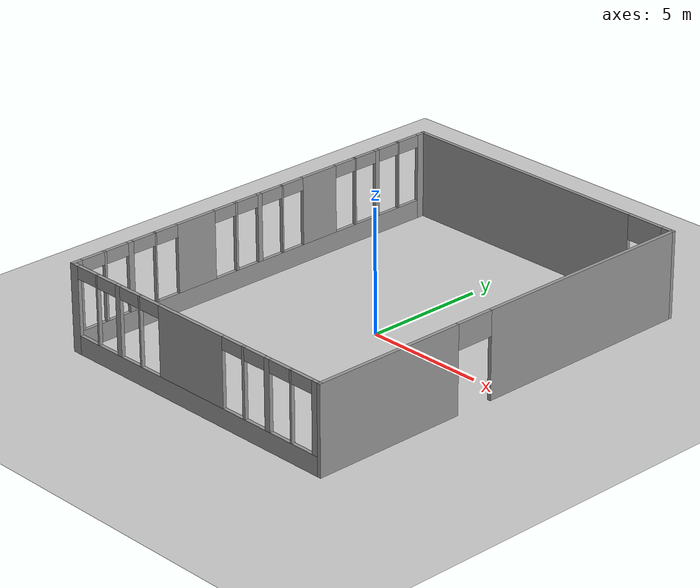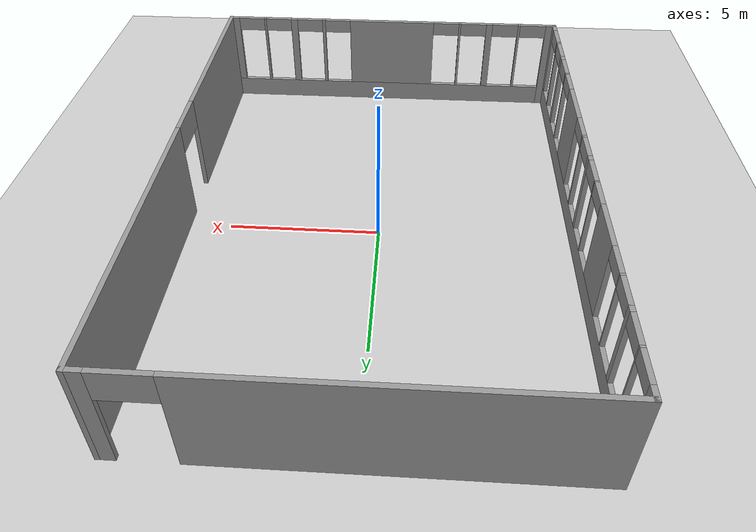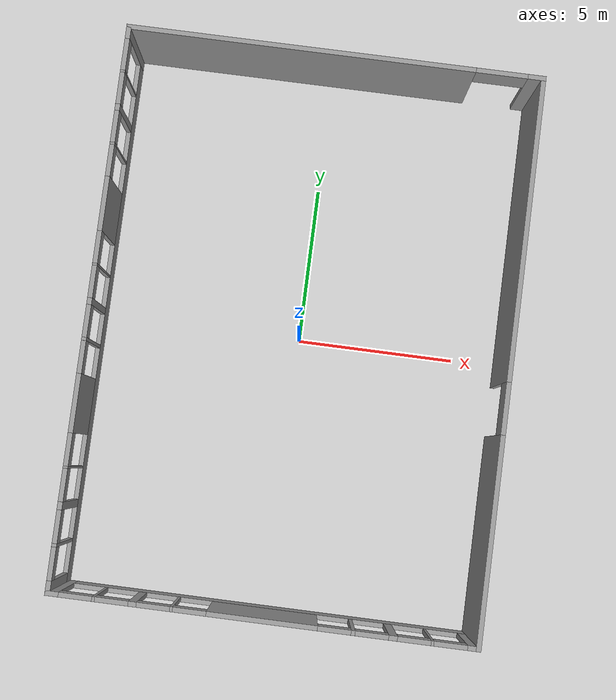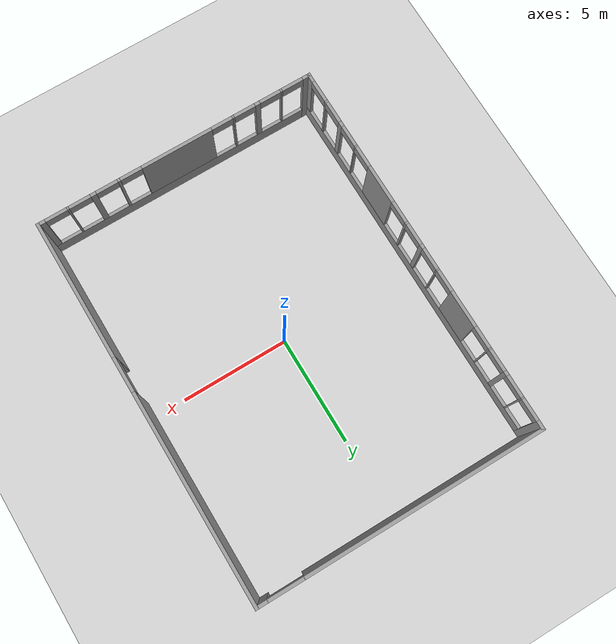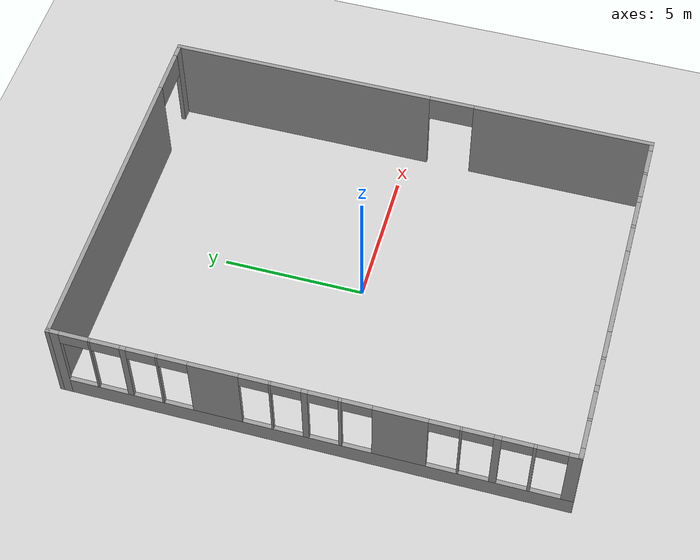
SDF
<sdf version="1.6">
 <world name="default">
  <model name="ground_plane">
   <static>1</static>
   <link name="link">
    <collision name="collision">
     <geometry><plane><normal>0 0 1</normal><size>100 100</size></plane></geometry>
     <surface><friction><ode><mu>100</mu><mu2>50</mu2></ode></friction></surface>
    </collision>
    <visual name="visual">
     <cast_shadows>0</cast_shadows>
     <geometry><plane><normal>0 0 1</normal><size>100 100</size></plane></geometry>
     <material>
      <script><uri>file://media/materials/scripts/gazebo.material</uri><name>Gazebo/Grey</name></script>
     </material>
    </visual>
   </link>
  </model>
  <model name="PiantaDefinitivaAlfa">
   <pose>0.023894 0.00572 0 0 -0 0</pose>
   <link name="Wall_0">
    <pose>0 -8.68 0 0 -0 0</pose>
    <visual name="Wall_0_Visual_0">
     <pose>-6.29943 0 1.75 0 -0 0</pose>
     <geometry><box><size>0.401138 0.15 3.5</size></box></geometry>
     <material>
      <script><uri>file://media/materials/scripts/gazebo.material</uri><name>Gazebo/Grey</name></script>
      <ambient>1 1 1 1</ambient>
     </material>
     <meta><layer>0</layer></meta>
    </visual>
    <collision name="Wall_0_Collision_0">
     <geometry><box><size>0.401138 0.15 3.5</size></box></geometry>
     <pose>-6.29943 0 1.75 0 -0 0</pose>
    </collision>
    <visual name="Wall_0_Visual_1">
     <pose>0.200569 0 0.375 0 -0 0</pose>
     <geometry><box><size>12.5989 0.15 0.75</size></box></geometry>
     <material>
      <script><uri>file://media/materials/scripts/gazebo.material</uri><name>Gazebo/Grey</name></script>
      <ambient>1 1 1 1</ambient>
     </material>
     <meta><layer>0</layer></meta>
    </visual>
    <collision name="Wall_0_Collision_1">
     <geometry><box><size>12.5989 0.15 0.75</size></box></geometry>
     <pose>0.200569 0 0.375 0 -0 0</pose>
    </collision>
    <visual name="Wall_0_Visual_2">
     <pose>-5.05617 0 2.125 0 -0 0</pose>
     <geometry><box><size>0.085387 0.15 2.75</size></box></geometry>
     <material>
      <script><uri>file://media/materials/scripts/gazebo.material</uri><name>Gazebo/Grey</name></script>
      <ambient>1 1 1 1</ambient>
     </material>
     <meta><layer>0</layer></meta>
    </visual>
    <collision name="Wall_0_Collision_2">
     <geometry><box><size>0.085387 0.15 2.75</size></box></geometry>
     <pose>-5.05617 0 2.125 0 -0 0</pose>
    </collision>
    <visual name="Wall_0_Visual_3">
     <pose>-3.89258 0 2.125 0 -0 0</pose>
     <geometry><box><size>0.241794 0.15 2.75</size></box></geometry>
     <material>
      <script><uri>file://media/materials/scripts/gazebo.material</uri><name>Gazebo/Grey</name></script>
      <ambient>1 1 1 1</ambient>
     </material>
     <meta><layer>0</layer></meta>
    </visual>
    <collision name="Wall_0_Collision_3">
     <geometry><box><size>0.241794 0.15 2.75</size></box></geometry>
     <pose>-3.89258 0 2.125 0 -0 0</pose>
    </collision>
    <visual name="Wall_0_Visual_4">
     <pose>-2.72949 0 2.125 0 -0 0</pose>
     <geometry><box><size>0.084384 0.15 2.75</size></box></geometry>
     <material>
      <script><uri>file://media/materials/scripts/gazebo.material</uri><name>Gazebo/Grey</name></script>
      <ambient>1 1 1 1</ambient>
     </material>
     <meta><layer>0</layer></meta>
    </visual>
    <collision name="Wall_0_Collision_4">
     <geometry><box><size>0.084384 0.15 2.75</size></box></geometry>
     <pose>-2.72949 0 2.125 0 -0 0</pose>
    </collision>
    <visual name="Wall_0_Visual_5">
     <pose>-0.027274 0 2.125 0 -0 0</pose>
     <geometry><box><size>3.32004 0.15 2.75</size></box></geometry>
     <material>
      <script><uri>file://media/materials/scripts/gazebo.material</uri><name>Gazebo/Grey</name></script>
      <ambient>1 1 1 1</ambient>
     </material>
     <meta><layer>0</layer></meta>
    </visual>
    <collision name="Wall_0_Collision_5">
     <geometry><box><size>3.32004 0.15 2.75</size></box></geometry>
     <pose>-0.027274 0 2.125 0 -0 0</pose>
    </collision>
    <visual name="Wall_0_Visual_6">
     <pose>2.69243 0 2.125 0 -0 0</pose>
     <geometry><box><size>0.119364 0.15 2.75</size></box></geometry>
     <material>
      <script><uri>file://media/materials/scripts/gazebo.material</uri><name>Gazebo/Grey</name></script>
      <ambient>1 1 1 1</ambient>
     </material>
     <meta><layer>0</layer></meta>
    </visual>
    <collision name="Wall_0_Collision_6">
     <geometry><box><size>0.119364 0.15 2.75</size></box></geometry>
     <pose>2.69243 0 2.125 0 -0 0</pose>
    </collision>
    <visual name="Wall_0_Visual_7">
     <pose>3.88176 0 2.125 0 -0 0</pose>
     <geometry><box><size>0.259284 0.15 2.75</size></box></geometry>
     <material>
      <script><uri>file://media/materials/scripts/gazebo.material</uri><name>Gazebo/Grey</name></script>
      <ambient>1 1 1 1</ambient>
     </material>
     <meta><layer>0</layer></meta>
    </visual>
    <collision name="Wall_0_Collision_7">
     <geometry><box><size>0.259284 0.15 2.75</size></box></geometry>
     <pose>3.88176 0 2.125 0 -0 0</pose>
    </collision>
    <visual name="Wall_0_Visual_8">
     <pose>5.05359 0 2.125 0 -0 0</pose>
     <geometry><box><size>0.084384 0.15 2.75</size></box></geometry>
     <material>
      <script><uri>file://media/materials/scripts/gazebo.material</uri><name>Gazebo/Grey</name></script>
      <ambient>1 1 1 1</ambient>
     </material>
     <meta><layer>0</layer></meta>
    </visual>
    <collision name="Wall_0_Collision_8">
     <geometry><box><size>0.084384 0.15 2.75</size></box></geometry>
     <pose>5.05359 0 2.125 0 -0 0</pose>
    </collision>
    <visual name="Wall_0_Visual_9">
     <pose>6.29789 0 2.125 0 -0 0</pose>
     <geometry><box><size>0.404219 0.15 2.75</size></box></geometry>
     <material>
      <script><uri>file://media/materials/scripts/gazebo.material</uri><name>Gazebo/Grey</name></script>
      <ambient>1 1 1 1</ambient>
     </material>
     <meta><layer>0</layer></meta>
    </visual>
    <collision name="Wall_0_Collision_9">
     <geometry><box><size>0.404219 0.15 2.75</size></box></geometry>
     <pose>6.29789 0 2.125 0 -0 0</pose>
    </collision>
    <visual name="Wall_0_Visual_10">
     <pose>-5.59886 0 3.25 0 -0 0</pose>
     <geometry><box><size>1 0.15 0.5</size></box></geometry>
     <material>
      <script><uri>file://media/materials/scripts/gazebo.material</uri><name>Gazebo/Grey</name></script>
      <ambient>1 1 1 1</ambient>
     </material>
     <meta><layer>0</layer></meta>
    </visual>
    <collision name="Wall_0_Collision_10">
     <geometry><box><size>1 0.15 0.5</size></box></geometry>
     <pose>-5.59886 0 3.25 0 -0 0</pose>
    </collision>
    <visual name="Wall_0_Visual_11">
     <pose>-4.51347 0 3.25 0 -0 0</pose>
     <geometry><box><size>1 0.15 0.5</size></box></geometry>
     <material>
      <script><uri>file://media/materials/scripts/gazebo.material</uri><name>Gazebo/Grey</name></script>
      <ambient>1 1 1 1</ambient>
     </material>
     <meta><layer>0</layer></meta>
    </visual>
    <collision name="Wall_0_Collision_11">
     <geometry><box><size>1 0.15 0.5</size></box></geometry>
     <pose>-4.51347 0 3.25 0 -0 0</pose>
    </collision>
    <visual name="Wall_0_Visual_12">
     <pose>-3.27168 0 3.25 0 -0 0</pose>
     <geometry><box><size>1 0.15 0.5</size></box></geometry>
     <material>
      <script><uri>file://media/materials/scripts/gazebo.material</uri><name>Gazebo/Grey</name></script>
      <ambient>1 1 1 1</ambient>
     </material>
     <meta><layer>0</layer></meta>
    </visual>
    <collision name="Wall_0_Collision_12">
     <geometry><box><size>1 0.15 0.5</size></box></geometry>
     <pose>-3.27168 0 3.25 0 -0 0</pose>
    </collision>
    <visual name="Wall_0_Visual_13">
     <pose>-2.1873 0 3.25 0 -0 0</pose>
     <geometry><box><size>1 0.15 0.5</size></box></geometry>
     <material>
      <script><uri>file://media/materials/scripts/gazebo.material</uri><name>Gazebo/Grey</name></script>
      <ambient>1 1 1 1</ambient>
     </material>
     <meta><layer>0</layer></meta>
    </visual>
    <collision name="Wall_0_Collision_13">
     <geometry><box><size>1 0.15 0.5</size></box></geometry>
     <pose>-2.1873 0 3.25 0 -0 0</pose>
    </collision>
    <visual name="Wall_0_Visual_14">
     <pose>2.13275 0 3.25 0 -0 0</pose>
     <geometry><box><size>1 0.15 0.5</size></box></geometry>
     <material>
      <script><uri>file://media/materials/scripts/gazebo.material</uri><name>Gazebo/Grey</name></script>
      <ambient>1 1 1 1</ambient>
     </material>
     <meta><layer>0</layer></meta>
    </visual>
    <collision name="Wall_0_Collision_14">
     <geometry><box><size>1 0.15 0.5</size></box></geometry>
     <pose>2.13275 0 3.25 0 -0 0</pose>
    </collision>
    <visual name="Wall_0_Visual_15">
     <pose>3.25211 0 3.25 0 -0 0</pose>
     <geometry><box><size>1 0.15 0.5</size></box></geometry>
     <material>
      <script><uri>file://media/materials/scripts/gazebo.material</uri><name>Gazebo/Grey</name></script>
      <ambient>1 1 1 1</ambient>
     </material>
     <meta><layer>0</layer></meta>
    </visual>
    <collision name="Wall_0_Collision_15">
     <geometry><box><size>1 0.15 0.5</size></box></geometry>
     <pose>3.25211 0 3.25 0 -0 0</pose>
    </collision>
    <visual name="Wall_0_Visual_16">
     <pose>4.5114 0 3.25 0 -0 0</pose>
     <geometry><box><size>1 0.15 0.5</size></box></geometry>
     <material>
      <script><uri>file://media/materials/scripts/gazebo.material</uri><name>Gazebo/Grey</name></script>
      <ambient>1 1 1 1</ambient>
     </material>
     <meta><layer>0</layer></meta>
    </visual>
    <collision name="Wall_0_Collision_16">
     <geometry><box><size>1 0.15 0.5</size></box></geometry>
     <pose>4.5114 0 3.25 0 -0 0</pose>
    </collision>
    <visual name="Wall_0_Visual_17">
     <pose>5.59578 0 3.25 0 -0 0</pose>
     <geometry><box><size>1 0.15 0.5</size></box></geometry>
     <material>
      <script><uri>file://media/materials/scripts/gazebo.material</uri><name>Gazebo/Grey</name></script>
      <ambient>1 1 1 1</ambient>
     </material>
     <meta><layer>0</layer></meta>
    </visual>
    <collision name="Wall_0_Collision_17">
     <geometry><box><size>1 0.15 0.5</size></box></geometry>
     <pose>5.59578 0 3.25 0 -0 0</pose>
    </collision>
   </link>
   <link name="Wall_2">
    <pose>6.425 0 0 0 -0 1.5708</pose>
    <visual name="Wall_2_Visual_0">
     <pose>-5.54089 0 1.75 0 -0 0</pose>
     <geometry><box><size>6.42841 0.15 3.5</size></box></geometry>
     <material>
      <script><uri>file://media/materials/scripts/gazebo.material</uri><name>Gazebo/Grey</name></script>
      <ambient>1 1 1 1</ambient>
     </material>
     <meta><layer>0</layer></meta>
    </visual>
    <collision name="Wall_2_Collision_0">
     <geometry><box><size>6.42841 0.15 3.5</size></box></geometry>
     <pose>-5.54089 0 1.75 0 -0 0</pose>
    </collision>
    <visual name="Wall_2_Visual_1">
     <pose>4.0142 0 1.75 0 -0 0</pose>
     <geometry><box><size>9.48178 0.15 3.5</size></box></geometry>
     <material>
      <script><uri>file://media/materials/scripts/gazebo.material</uri><name>Gazebo/Grey</name></script>
      <ambient>1 1 1 1</ambient>
     </material>
     <meta><layer>0</layer></meta>
    </visual>
    <collision name="Wall_2_Collision_1">
     <geometry><box><size>9.48178 0.15 3.5</size></box></geometry>
     <pose>4.0142 0 1.75 0 -0 0</pose>
    </collision>
    <visual name="Wall_2_Visual_2">
     <pose>-1.52668 0 3 0 -0 0</pose>
     <geometry><box><size>1.6 0.15 1</size></box></geometry>
     <material>
      <script><uri>file://media/materials/scripts/gazebo.material</uri><name>Gazebo/Grey</name></script>
      <ambient>1 1 1 1</ambient>
     </material>
     <meta><layer>0</layer></meta>
    </visual>
    <collision name="Wall_2_Collision_2">
     <geometry><box><size>1.6 0.15 1</size></box></geometry>
     <pose>-1.52668 0 3 0 -0 0</pose>
    </collision>
   </link>
   <link name="Wall_3">
    <pose>0 8.68 0 0 -0 3.14159</pose>
    <visual name="Wall_3_Visual_0">
     <pose>-6.22135 0 1.75 0 -0 0</pose>
     <geometry><box><size>0.557299 0.15 3.5</size></box></geometry>
     <material>
      <script><uri>file://media/materials/scripts/gazebo.material</uri><name>Gazebo/Grey</name></script>
      <ambient>1 1 1 1</ambient>
     </material>
     <meta><layer>0</layer></meta>
    </visual>
    <collision name="Wall_3_Collision_0">
     <geometry><box><size>0.557299 0.15 3.5</size></box></geometry>
     <pose>-6.22135 0 1.75 0 -0 0</pose>
    </collision>
    <visual name="Wall_3_Visual_1">
     <pose>1.07865 0 1.75 0 -0 0</pose>
     <geometry><box><size>10.8427 0.15 3.5</size></box></geometry>
     <material>
      <script><uri>file://media/materials/scripts/gazebo.material</uri><name>Gazebo/Grey</name></script>
      <ambient>1 1 1 1</ambient>
     </material>
     <meta><layer>0</layer></meta>
    </visual>
    <collision name="Wall_3_Collision_1">
     <geometry><box><size>10.8427 0.15 3.5</size></box></geometry>
     <pose>1.07865 0 1.75 0 -0 0</pose>
    </collision>
    <visual name="Wall_3_Visual_2">
     <pose>-5.1427 0 3 0 -0 0</pose>
     <geometry><box><size>1.6 0.15 1</size></box></geometry>
     <material>
      <script><uri>file://media/materials/scripts/gazebo.material</uri><name>Gazebo/Grey</name></script>
      <ambient>1 1 1 1</ambient>
     </material>
     <meta><layer>0</layer></meta>
    </visual>
    <collision name="Wall_3_Collision_2">
     <geometry><box><size>1.6 0.15 1</size></box></geometry>
     <pose>-5.1427 0 3 0 -0 0</pose>
    </collision>
   </link>
   <link name="Wall_4">
    <pose>-6.425 0.005 0 0 0 -1.5708</pose>
    <visual name="Wall_4_Visual_0">
     <pose>-8.52384 0 1.75 0 -0 0</pose>
     <geometry><box><size>0.452322 0.15 3.5</size></box></geometry>
     <material>
      <script><uri>file://media/materials/scripts/gazebo.material</uri><name>Gazebo/Grey</name></script>
      <ambient>1 1 1 1</ambient>
     </material>
     <meta><layer>0</layer></meta>
    </visual>
    <collision name="Wall_4_Collision_0">
     <geometry><box><size>0.452322 0.15 3.5</size></box></geometry>
     <pose>-8.52384 0 1.75 0 -0 0</pose>
    </collision>
    <visual name="Wall_4_Visual_1">
     <pose>0.226161 0 0.375 0 -0 0</pose>
     <geometry><box><size>17.0477 0.15 0.75</size></box></geometry>
     <material>
      <script><uri>file://media/materials/scripts/gazebo.material</uri><name>Gazebo/Grey</name></script>
      <ambient>1 1 1 1</ambient>
     </material>
     <meta><layer>0</layer></meta>
    </visual>
    <collision name="Wall_4_Collision_1">
     <geometry><box><size>17.0477 0.15 0.75</size></box></geometry>
     <pose>0.226161 0 0.375 0 -0 0</pose>
    </collision>
    <visual name="Wall_4_Visual_2">
     <pose>-7.26423 0 2.125 0 -0 0</pose>
     <geometry><box><size>0.066894 0.15 2.75</size></box></geometry>
     <material>
      <script><uri>file://media/materials/scripts/gazebo.material</uri><name>Gazebo/Grey</name></script>
      <ambient>1 1 1 1</ambient>
     </material>
     <meta><layer>0</layer></meta>
    </visual>
    <collision name="Wall_4_Collision_2">
     <geometry><box><size>0.066894 0.15 2.75</size></box></geometry>
     <pose>-7.26423 0 2.125 0 -0 0</pose>
    </collision>
    <visual name="Wall_4_Visual_3">
     <pose>-6.12738 0 2.125 0 -0 0</pose>
     <geometry><box><size>0.206814 0.15 2.75</size></box></geometry>
     <material>
      <script><uri>file://media/materials/scripts/gazebo.material</uri><name>Gazebo/Grey</name></script>
      <ambient>1 1 1 1</ambient>
     </material>
     <meta><layer>0</layer></meta>
    </visual>
    <collision name="Wall_4_Collision_3">
     <geometry><box><size>0.206814 0.15 2.75</size></box></geometry>
     <pose>-6.12738 0 2.125 0 -0 0</pose>
    </collision>
    <visual name="Wall_4_Visual_4">
     <pose>-4.99052 0 2.125 0 -0 0</pose>
     <geometry><box><size>0.066894 0.15 2.75</size></box></geometry>
     <material>
      <script><uri>file://media/materials/scripts/gazebo.material</uri><name>Gazebo/Grey</name></script>
      <ambient>1 1 1 1</ambient>
     </material>
     <meta><layer>0</layer></meta>
    </visual>
    <collision name="Wall_4_Collision_4">
     <geometry><box><size>0.066894 0.15 2.75</size></box></geometry>
     <pose>-4.99052 0 2.125 0 -0 0</pose>
    </collision>
    <visual name="Wall_4_Visual_5">
     <pose>-3.11034 0 2.125 0 -0 0</pose>
     <geometry><box><size>1.69347 0.15 2.75</size></box></geometry>
     <material>
      <script><uri>file://media/materials/scripts/gazebo.material</uri><name>Gazebo/Grey</name></script>
      <ambient>1 1 1 1</ambient>
     </material>
     <meta><layer>0</layer></meta>
    </visual>
    <collision name="Wall_4_Collision_5">
     <geometry><box><size>1.69347 0.15 2.75</size></box></geometry>
     <pose>-3.11034 0 2.125 0 -0 0</pose>
    </collision>
    <visual name="Wall_4_Visual_6">
     <pose>-1.23016 0 2.125 0 -0 0</pose>
     <geometry><box><size>0.066894 0.15 2.75</size></box></geometry>
     <material>
      <script><uri>file://media/materials/scripts/gazebo.material</uri><name>Gazebo/Grey</name></script>
      <ambient>1 1 1 1</ambient>
     </material>
     <meta><layer>0</layer></meta>
    </visual>
    <collision name="Wall_4_Collision_6">
     <geometry><box><size>0.066894 0.15 2.75</size></box></geometry>
     <pose>-1.23016 0 2.125 0 -0 0</pose>
    </collision>
    <visual name="Wall_4_Visual_7">
     <pose>-0.093305 0 2.125 0 -0 0</pose>
     <geometry><box><size>0.206814 0.15 2.75</size></box></geometry>
     <material>
      <script><uri>file://media/materials/scripts/gazebo.material</uri><name>Gazebo/Grey</name></script>
      <ambient>1 1 1 1</ambient>
     </material>
     <meta><layer>0</layer></meta>
    </visual>
    <collision name="Wall_4_Collision_7">
     <geometry><box><size>0.206814 0.15 2.75</size></box></geometry>
     <pose>-0.093305 0 2.125 0 -0 0</pose>
    </collision>
    <visual name="Wall_4_Visual_8">
     <pose>1.06104 0 2.125 0 -0 0</pose>
     <geometry><box><size>0.101874 0.15 2.75</size></box></geometry>
     <material>
      <script><uri>file://media/materials/scripts/gazebo.material</uri><name>Gazebo/Grey</name></script>
      <ambient>1 1 1 1</ambient>
     </material>
     <meta><layer>0</layer></meta>
    </visual>
    <collision name="Wall_4_Collision_8">
     <geometry><box><size>0.101874 0.15 2.75</size></box></geometry>
     <pose>1.06104 0 2.125 0 -0 0</pose>
    </collision>
    <visual name="Wall_4_Visual_9">
     <pose>3.01118 0 2.125 0 -0 0</pose>
     <geometry><box><size>1.79841 0.15 2.75</size></box></geometry>
     <material>
      <script><uri>file://media/materials/scripts/gazebo.material</uri><name>Gazebo/Grey</name></script>
      <ambient>1 1 1 1</ambient>
     </material>
     <meta><layer>0</layer></meta>
    </visual>
    <collision name="Wall_4_Collision_9">
     <geometry><box><size>1.79841 0.15 2.75</size></box></geometry>
     <pose>3.01118 0 2.125 0 -0 0</pose>
    </collision>
    <visual name="Wall_4_Visual_10">
     <pose>4.94383 0 2.125 0 -0 0</pose>
     <geometry><box><size>0.066894 0.15 2.75</size></box></geometry>
     <material>
      <script><uri>file://media/materials/scripts/gazebo.material</uri><name>Gazebo/Grey</name></script>
      <ambient>1 1 1 1</ambient>
     </material>
     <meta><layer>0</layer></meta>
    </visual>
    <collision name="Wall_4_Collision_10">
     <geometry><box><size>0.066894 0.15 2.75</size></box></geometry>
     <pose>4.94383 0 2.125 0 -0 0</pose>
    </collision>
    <visual name="Wall_4_Visual_11">
     <pose>6.09818 0 2.125 0 -0 0</pose>
     <geometry><box><size>0.241794 0.15 2.75</size></box></geometry>
     <material>
      <script><uri>file://media/materials/scripts/gazebo.material</uri><name>Gazebo/Grey</name></script>
      <ambient>1 1 1 1</ambient>
     </material>
     <meta><layer>0</layer></meta>
    </visual>
    <collision name="Wall_4_Collision_11">
     <geometry><box><size>0.241794 0.15 2.75</size></box></geometry>
     <pose>6.09818 0 2.125 0 -0 0</pose>
    </collision>
    <visual name="Wall_4_Visual_12">
     <pose>7.27001 0 2.125 0 -0 0</pose>
     <geometry><box><size>0.101874 0.15 2.75</size></box></geometry>
     <material>
      <script><uri>file://media/materials/scripts/gazebo.material</uri><name>Gazebo/Grey</name></script>
      <ambient>1 1 1 1</ambient>
     </material>
     <meta><layer>0</layer></meta>
    </visual>
    <collision name="Wall_4_Collision_12">
     <geometry><box><size>0.101874 0.15 2.75</size></box></geometry>
     <pose>7.27001 0 2.125 0 -0 0</pose>
    </collision>
    <visual name="Wall_4_Visual_13">
     <pose>8.53547 0 2.125 0 -0 0</pose>
     <geometry><box><size>0.429052 0.15 2.75</size></box></geometry>
     <material>
      <script><uri>file://media/materials/scripts/gazebo.material</uri><name>Gazebo/Grey</name></script>
      <ambient>1 1 1 1</ambient>
     </material>
     <meta><layer>0</layer></meta>
    </visual>
    <collision name="Wall_4_Collision_13">
     <geometry><box><size>0.429052 0.15 2.75</size></box></geometry>
     <pose>8.53547 0 2.125 0 -0 0</pose>
    </collision>
    <visual name="Wall_4_Visual_14">
     <pose>-7.79768 0 3.25 0 -0 0</pose>
     <geometry><box><size>1 0.15 0.5</size></box></geometry>
     <material>
      <script><uri>file://media/materials/scripts/gazebo.material</uri><name>Gazebo/Grey</name></script>
      <ambient>1 1 1 1</ambient>
     </material>
     <meta><layer>0</layer></meta>
    </visual>
    <collision name="Wall_4_Collision_14">
     <geometry><box><size>1 0.15 0.5</size></box></geometry>
     <pose>-7.79768 0 3.25 0 -0 0</pose>
    </collision>
    <visual name="Wall_4_Visual_15">
     <pose>-6.73078 0 3.25 0 -0 0</pose>
     <geometry><box><size>1 0.15 0.5</size></box></geometry>
     <material>
      <script><uri>file://media/materials/scripts/gazebo.material</uri><name>Gazebo/Grey</name></script>
      <ambient>1 1 1 1</ambient>
     </material>
     <meta><layer>0</layer></meta>
    </visual>
    <collision name="Wall_4_Collision_15">
     <geometry><box><size>1 0.15 0.5</size></box></geometry>
     <pose>-6.73078 0 3.25 0 -0 0</pose>
    </collision>
    <visual name="Wall_4_Visual_16">
     <pose>-5.52397 0 3.25 0 -0 0</pose>
     <geometry><box><size>1 0.15 0.5</size></box></geometry>
     <material>
      <script><uri>file://media/materials/scripts/gazebo.material</uri><name>Gazebo/Grey</name></script>
      <ambient>1 1 1 1</ambient>
     </material>
     <meta><layer>0</layer></meta>
    </visual>
    <collision name="Wall_4_Collision_16">
     <geometry><box><size>1 0.15 0.5</size></box></geometry>
     <pose>-5.52397 0 3.25 0 -0 0</pose>
    </collision>
    <visual name="Wall_4_Visual_17">
     <pose>-4.45708 0 3.25 0 -0 0</pose>
     <geometry><box><size>1 0.15 0.5</size></box></geometry>
     <material>
      <script><uri>file://media/materials/scripts/gazebo.material</uri><name>Gazebo/Grey</name></script>
      <ambient>1 1 1 1</ambient>
     </material>
     <meta><layer>0</layer></meta>
    </visual>
    <collision name="Wall_4_Collision_17">
     <geometry><box><size>1 0.15 0.5</size></box></geometry>
     <pose>-4.45708 0 3.25 0 -0 0</pose>
    </collision>
    <visual name="Wall_4_Visual_18">
     <pose>-1.76361 0 3.25 0 -0 0</pose>
     <geometry><box><size>1 0.15 0.5</size></box></geometry>
     <material>
      <script><uri>file://media/materials/scripts/gazebo.material</uri><name>Gazebo/Grey</name></script>
      <ambient>1 1 1 1</ambient>
     </material>
     <meta><layer>0</layer></meta>
    </visual>
    <collision name="Wall_4_Collision_18">
     <geometry><box><size>1 0.15 0.5</size></box></geometry>
     <pose>-1.76361 0 3.25 0 -0 0</pose>
    </collision>
    <visual name="Wall_4_Visual_19">
     <pose>-0.696712 0 3.25 0 -0 0</pose>
     <geometry><box><size>1 0.15 0.5</size></box></geometry>
     <material>
      <script><uri>file://media/materials/scripts/gazebo.material</uri><name>Gazebo/Grey</name></script>
      <ambient>1 1 1 1</ambient>
     </material>
     <meta><layer>0</layer></meta>
    </visual>
    <collision name="Wall_4_Collision_19">
     <geometry><box><size>1 0.15 0.5</size></box></geometry>
     <pose>-0.696712 0 3.25 0 -0 0</pose>
    </collision>
    <visual name="Wall_4_Visual_20">
     <pose>0.510102 0 3.25 0 -0 0</pose>
     <geometry><box><size>1 0.15 0.5</size></box></geometry>
     <material>
      <script><uri>file://media/materials/scripts/gazebo.material</uri><name>Gazebo/Grey</name></script>
      <ambient>1 1 1 1</ambient>
     </material>
     <meta><layer>0</layer></meta>
    </visual>
    <collision name="Wall_4_Collision_20">
     <geometry><box><size>1 0.15 0.5</size></box></geometry>
     <pose>0.510102 0 3.25 0 -0 0</pose>
    </collision>
    <visual name="Wall_4_Visual_21">
     <pose>1.61198 0 3.25 0 -0 0</pose>
     <geometry><box><size>1 0.15 0.5</size></box></geometry>
     <material>
      <script><uri>file://media/materials/scripts/gazebo.material</uri><name>Gazebo/Grey</name></script>
      <ambient>1 1 1 1</ambient>
     </material>
     <meta><layer>0</layer></meta>
    </visual>
    <collision name="Wall_4_Collision_21">
     <geometry><box><size>1 0.15 0.5</size></box></geometry>
     <pose>1.61198 0 3.25 0 -0 0</pose>
    </collision>
    <visual name="Wall_4_Visual_22">
     <pose>4.41039 0 3.25 0 -0 0</pose>
     <geometry><box><size>1 0.15 0.5</size></box></geometry>
     <material>
      <script><uri>file://media/materials/scripts/gazebo.material</uri><name>Gazebo/Grey</name></script>
      <ambient>1 1 1 1</ambient>
     </material>
     <meta><layer>0</layer></meta>
    </visual>
    <collision name="Wall_4_Collision_22">
     <geometry><box><size>1 0.15 0.5</size></box></geometry>
     <pose>4.41039 0 3.25 0 -0 0</pose>
    </collision>
    <visual name="Wall_4_Visual_23">
     <pose>5.47728 0 3.25 0 -0 0</pose>
     <geometry><box><size>1 0.15 0.5</size></box></geometry>
     <material>
      <script><uri>file://media/materials/scripts/gazebo.material</uri><name>Gazebo/Grey</name></script>
      <ambient>1 1 1 1</ambient>
     </material>
     <meta><layer>0</layer></meta>
    </visual>
    <collision name="Wall_4_Collision_23">
     <geometry><box><size>1 0.15 0.5</size></box></geometry>
     <pose>5.47728 0 3.25 0 -0 0</pose>
    </collision>
    <visual name="Wall_4_Visual_24">
     <pose>6.71907 0 3.25 0 -0 0</pose>
     <geometry><box><size>1 0.15 0.5</size></box></geometry>
     <material>
      <script><uri>file://media/materials/scripts/gazebo.material</uri><name>Gazebo/Grey</name></script>
      <ambient>1 1 1 1</ambient>
     </material>
     <meta><layer>0</layer></meta>
    </visual>
    <collision name="Wall_4_Collision_24">
     <geometry><box><size>1 0.15 0.5</size></box></geometry>
     <pose>6.71907 0 3.25 0 -0 0</pose>
    </collision>
    <visual name="Wall_4_Visual_25">
     <pose>7.82095 0 3.25 0 -0 0</pose>
     <geometry><box><size>1 0.15 0.5</size></box></geometry>
     <material>
      <script><uri>file://media/materials/scripts/gazebo.material</uri><name>Gazebo/Grey</name></script>
      <ambient>1 1 1 1</ambient>
     </material>
     <meta><layer>0</layer></meta>
    </visual>
    <collision name="Wall_4_Collision_25">
     <geometry><box><size>1 0.15 0.5</size></box></geometry>
     <pose>7.82095 0 3.25 0 -0 0</pose>
    </collision>
   </link>
   <static>1</static>
  </model>
 </world>
</sdf>
